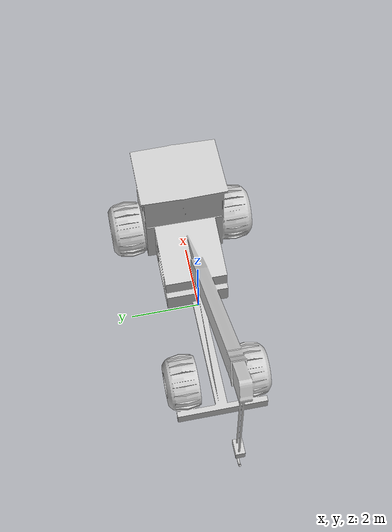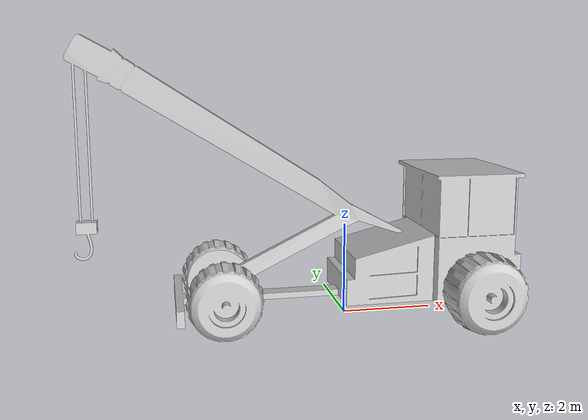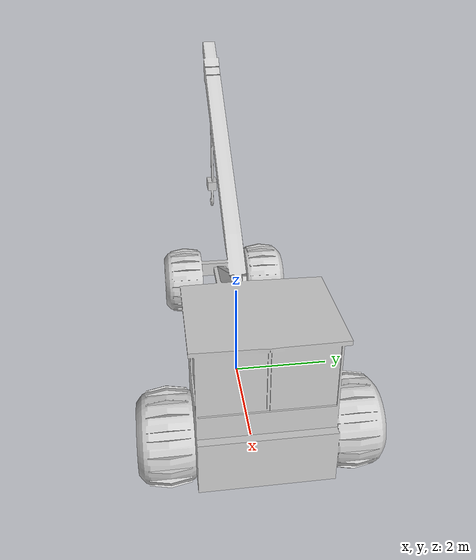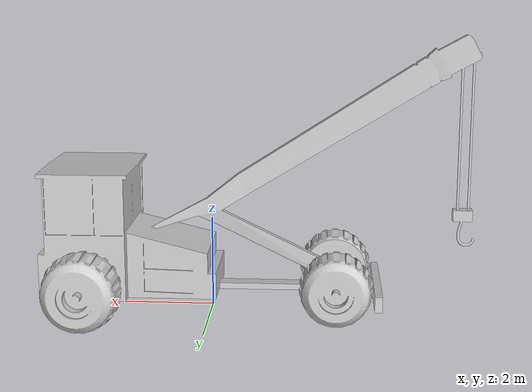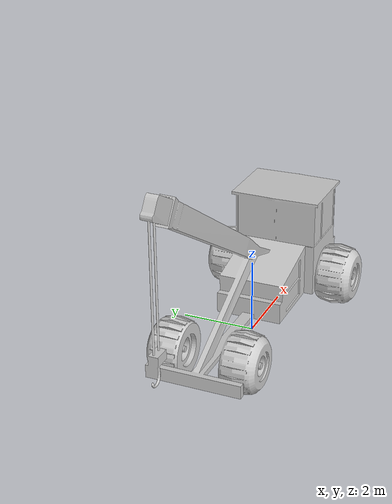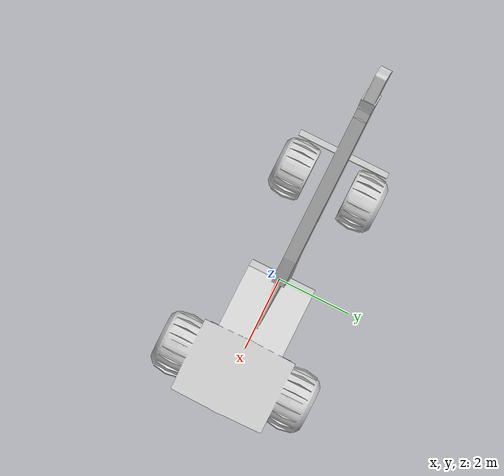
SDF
<?xml version="1.0" ?>
<sdf version="1.6">
  <model name="crane">
    <static>true</static>
    <link name="link">
      <collision name="collision">
        <pose>0 0 0 0 0 0</pose>
        <geometry>
          <mesh>
            <scale>0.5 0.5 0.5</scale>
            <uri>model://crane/meshes/crane.dae</uri>
          </mesh>
        </geometry>
      </collision>
      <visual name="visual">
        <pose>0 0 0 0 0 0</pose>
        <geometry>
          <mesh>
            <scale>0.5 0.5 0.5</scale>
            <uri>model://crane/meshes/crane.dae</uri>
          </mesh>
        </geometry>
      </visual>
    </link>
  </model>
</sdf>
